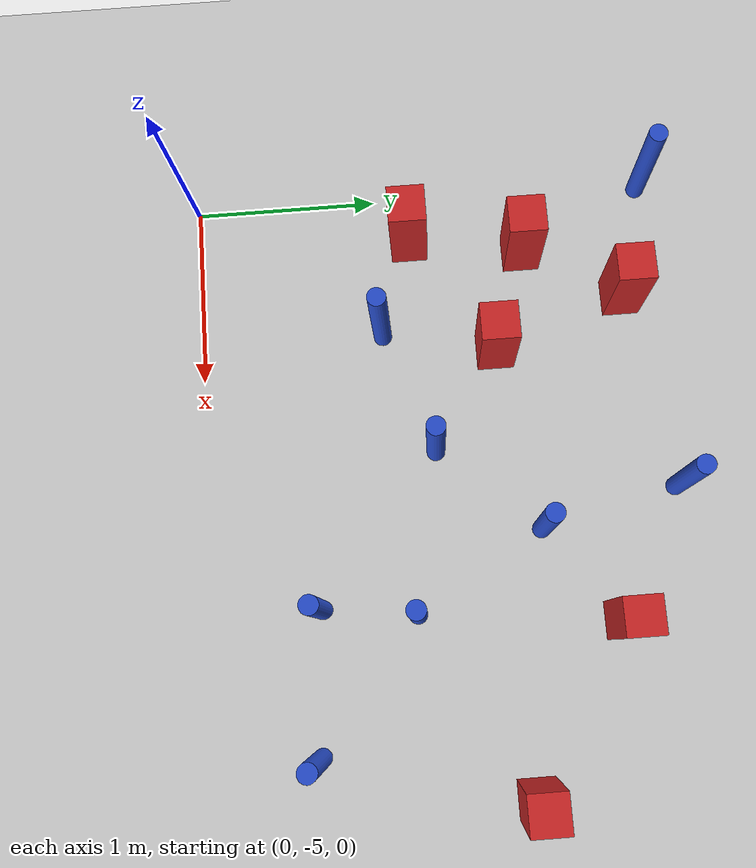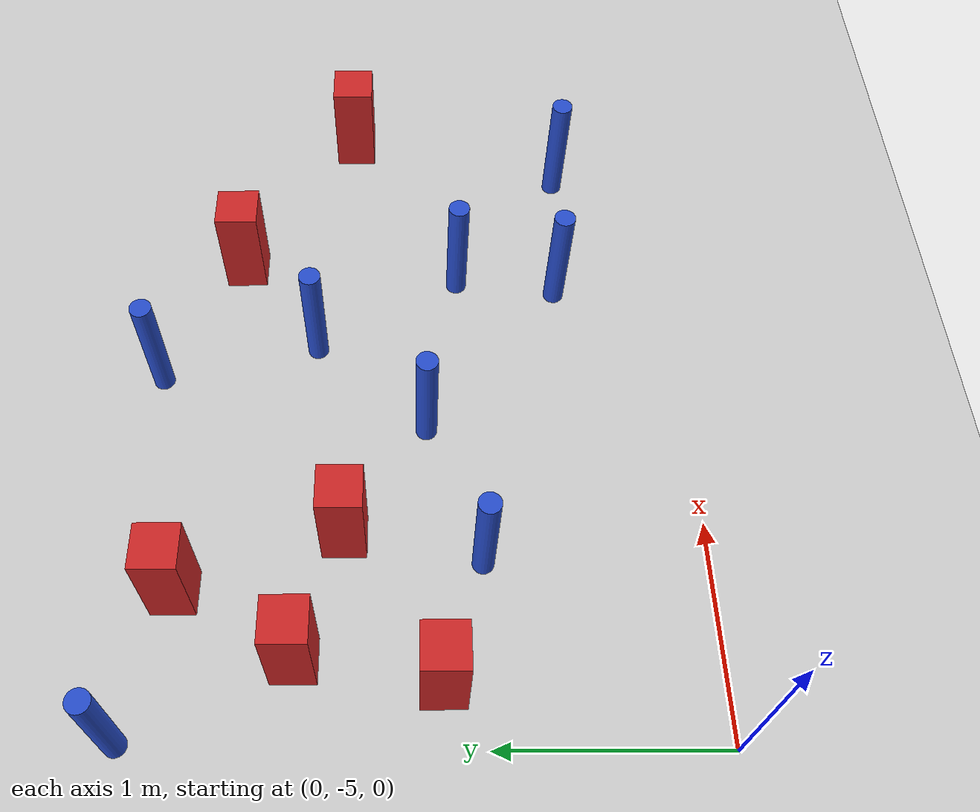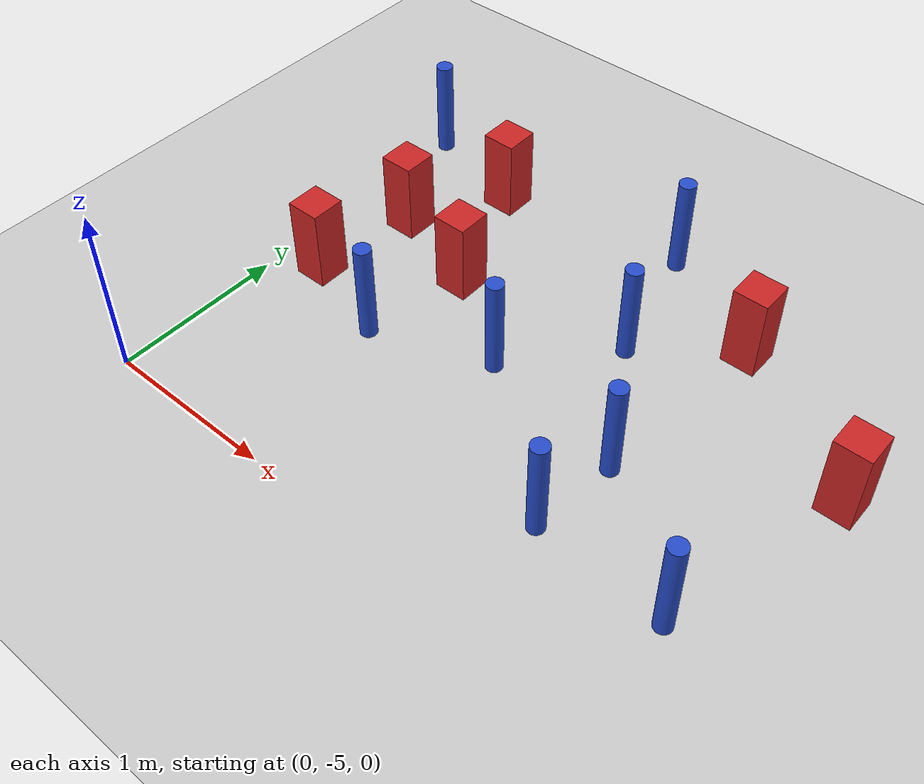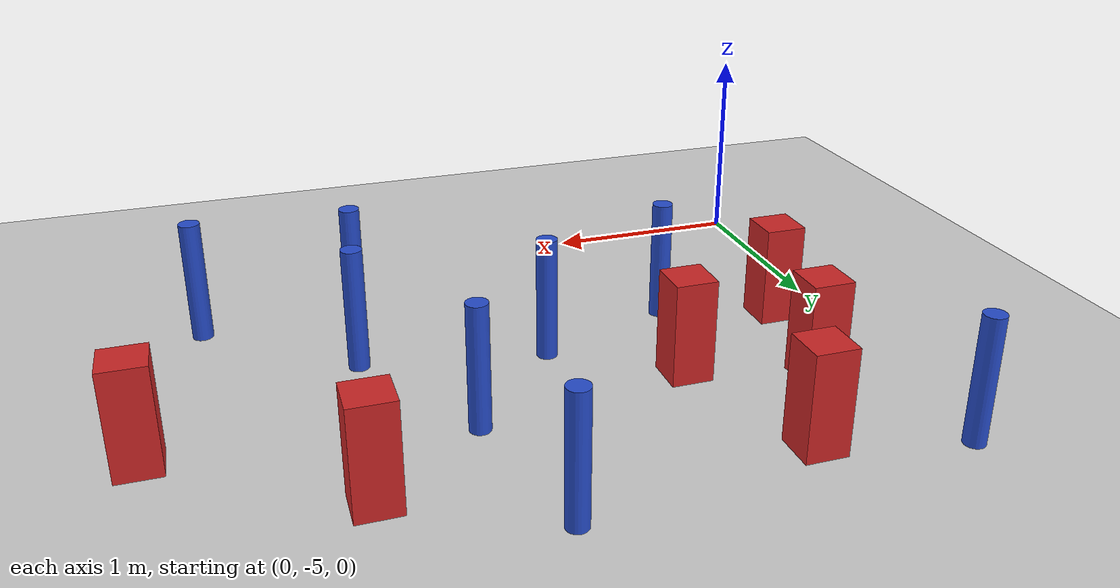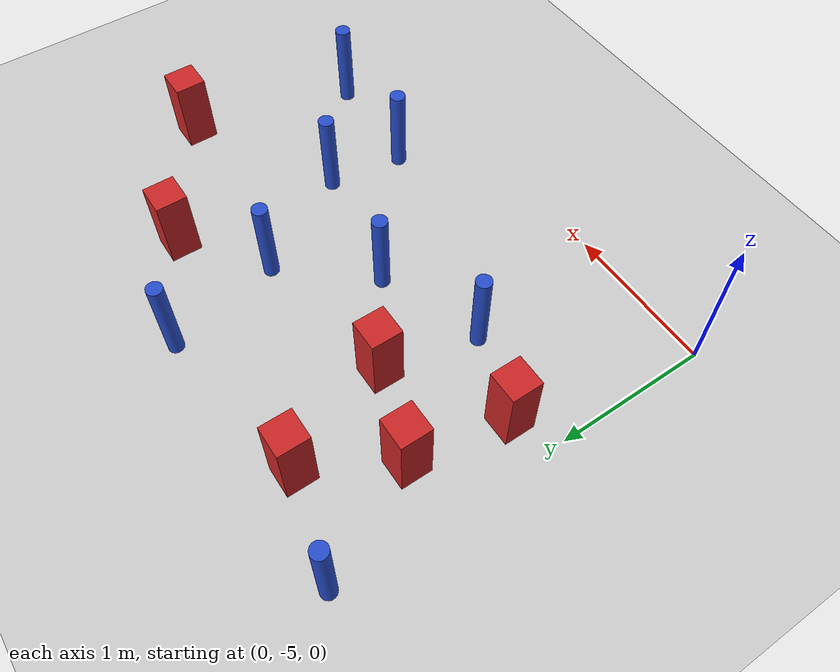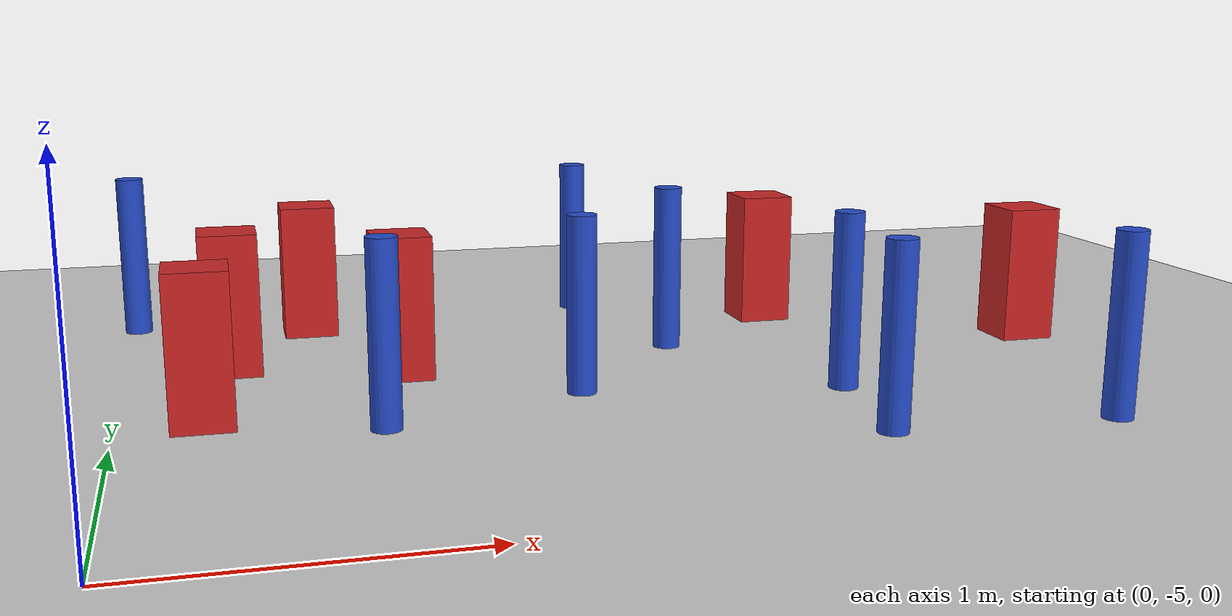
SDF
<sdf version="1.6">
 <world name="default">
  <model name="ground_plane">
   <static>1</static>
   <link name="link">
    <collision name="collision">
     <geometry><plane><normal>0 0 1</normal><size>100 100</size></plane></geometry>
     <surface><friction><ode><mu>100</mu><mu2>50</mu2></ode></friction></surface>
    </collision>
    <visual name="visual">
     <cast_shadows>0</cast_shadows>
     <geometry><plane><normal>0 0 1</normal><size>100 100</size></plane></geometry>
     <material>
      <ambient>1.0 1.0 1.0 1.0</ambient>
      <diffuse>0.8 0.8 0.8 1.0</diffuse>
      <specular>0.01 0.01 0.01 1.000000</specular>
     </material>
    </visual>
   </link>
  </model>
  <model name="pole_obstacle17">
   <static>true</static>
   <pose>2.30088741263 -4.41169465217 7.38925637345e-09 -8.47170692798e-08 1.24976765033e-08 -1.74513093019e-07</pose>
   <link name="link">
    <pose>0 0 0.3 0 -0 0</pose>
    <inertial>
     <mass>1</mass>
     <inertia><ixx>0.145833</ixx><ixy>0</ixy><ixz>0</ixz><iyy>0.145833</iyy><iyz>0</iyz><izz>0.125</izz></inertia>
    </inertial>
    <collision name="collision">
     <geometry><cylinder><radius>0.05</radius><length>.6</length></cylinder></geometry>
    </collision>
    <visual name="visual">
     <geometry><cylinder><radius>0.05</radius><length>.6</length></cylinder></geometry>
     <material>
      <script><name>Gazebo/Blue</name><uri>file://media/materials/scripts/gazebo.material</uri></script>
     </material>
    </visual>
   </link>
  </model>
  <model name="pole_obstacle41">
   <static>true</static>
   <pose>1.49219804884 -3.75339099654 7.38925637345e-09 -8.47170692799e-08 1.24976765053e-08 -1.74513093017e-07</pose>
   <link name="link">
    <pose>0 0 0.3 0 -0 0</pose>
    <inertial>
     <mass>1</mass>
     <inertia><ixx>0.145833</ixx><ixy>0</ixy><ixz>0</ixz><iyy>0.145833</iyy><iyz>0</iyz><izz>0.125</izz></inertia>
    </inertial>
    <collision name="collision">
     <geometry><cylinder><radius>0.05</radius><length>.6</length></cylinder></geometry>
    </collision>
    <visual name="visual">
     <geometry><cylinder><radius>0.05</radius><length>.6</length></cylinder></geometry>
     <material>
      <script><name>Gazebo/Blue</name><uri>file://media/materials/scripts/gazebo.material</uri></script>
     </material>
    </visual>
   </link>
  </model>
  <model name="pole_obstacle50">
   <static>true</static>
   <pose>2.36343220063 -3.91300759229 7.38925637345e-09 -8.47170692798e-08 1.24976764939e-08 -1.74513093025e-07</pose>
   <link name="link">
    <pose>0 0 0.3 0 -0 0</pose>
    <inertial>
     <mass>1</mass>
     <inertia><ixx>0.145833</ixx><ixy>0</ixy><ixz>0</ixz><iyy>0.145833</iyy><iyz>0</iyz><izz>0.125</izz></inertia>
    </inertial>
    <collision name="collision">
     <geometry><cylinder><radius>0.05</radius><length>.6</length></cylinder></geometry>
    </collision>
    <visual name="visual">
     <geometry><cylinder><radius>0.05</radius><length>.6</length></cylinder></geometry>
     <material>
      <script><name>Gazebo/Blue</name><uri>file://media/materials/scripts/gazebo.material</uri></script>
     </material>
    </visual>
   </link>
  </model>
  <model name="pole_obstacle55">
   <static>true</static>
   <pose>1.78070648098 -2.47461447134 7.38925637345e-09 -8.47170692799e-08 1.24976765053e-08 -1.74513093017e-07</pose>
   <link name="link">
    <pose>0 0 0.3 0 -0 0</pose>
    <inertial>
     <mass>1</mass>
     <inertia><ixx>0.145833</ixx><ixy>0</ixy><ixz>0</ixz><iyy>0.145833</iyy><iyz>0</iyz><izz>0.125</izz></inertia>
    </inertial>
    <collision name="collision">
     <geometry><cylinder><radius>0.05</radius><length>.6</length></cylinder></geometry>
    </collision>
    <visual name="visual">
     <geometry><cylinder><radius>0.05</radius><length>.6</length></cylinder></geometry>
     <material>
      <script><name>Gazebo/Blue</name><uri>file://media/materials/scripts/gazebo.material</uri></script>
     </material>
    </visual>
   </link>
  </model>
  <model name="square_post_obstacle45">
   <static>true</static>
   <pose>0.678943746648 -2.65649669118 1.91545236811e-07 -7.35059704564e-06 1.12565212e-07 2.39332434364e-05</pose>
   <link name="link">
    <pose>0 0 0.25 0 -0 0</pose>
    <inertial>
     <mass>100</mass>
     <inertia>
      <ixx>0.166667</ixx>
      <ixy>0</ixy>
      <ixz>0</ixz>
      <iyy>0.166667</iyy>
      <iyz>0</iyz>
      <izz>0.166667</izz>
     </inertia>
    </inertial>
    <collision name="collision"><geometry><box><size>.2 .2 .5</size></box></geometry></collision>
    <visual name="visual">
     <geometry><box><size>.2 .2 .5</size></box></geometry>
     <material>
      <script><name>Gazebo/Red</name><uri>file://media/materials/scripts/gazebo.material</uri></script>
     </material>
    </visual>
   </link>
  </model>
  <model name="square_post_obstacle70">
   <static>true</static>
   <pose>0.268658454997 -3.81487261849 1.91545236811e-07 -7.35059704564e-06 1.12565212e-07 2.39332434364e-05</pose>
   <link name="link">
    <pose>0 0 0.25 0 -0 0</pose>
    <inertial>
     <mass>100</mass>
     <inertia>
      <ixx>0.166667</ixx>
      <ixy>0</ixy>
      <ixz>0</ixz>
      <iyy>0.166667</iyy>
      <iyz>0</iyz>
      <izz>0.166667</izz>
     </inertia>
    </inertial>
    <collision name="collision"><geometry><box><size>.2 .2 .5</size></box></geometry></collision>
    <visual name="visual">
     <geometry><box><size>.2 .2 .5</size></box></geometry>
     <material>
      <script><name>Gazebo/Red</name><uri>file://media/materials/scripts/gazebo.material</uri></script>
     </material>
    </visual>
   </link>
  </model>
  <model name="pole_obstacle93">
   <static>true</static>
   <pose>1.95817246173 -3.22002427242 7.38925637345e-09 -8.47170692799e-08 1.24976765015e-08 -1.74513093019e-07</pose>
   <link name="link">
    <pose>0 0 0.3 0 -0 0</pose>
    <inertial>
     <mass>1</mass>
     <inertia><ixx>0.145833</ixx><ixy>0</ixy><ixz>0</ixz><iyy>0.145833</iyy><iyz>0</iyz><izz>0.125</izz></inertia>
    </inertial>
    <collision name="collision">
     <geometry><cylinder><radius>0.05</radius><length>.6</length></cylinder></geometry>
    </collision>
    <visual name="visual">
     <geometry><cylinder><radius>0.05</radius><length>.6</length></cylinder></geometry>
     <material>
      <script><name>Gazebo/Blue</name><uri>file://media/materials/scripts/gazebo.material</uri></script>
     </material>
    </visual>
   </link>
  </model>
  <model name="pole_obstacle115">
   <static>true</static>
   <pose>3.04978709195 -4.45508612711 7.38925637345e-09 -8.47170692798e-08 1.24976765033e-08 -1.74513093019e-07</pose>
   <link name="link">
    <pose>0 0 0.3 0 -0 0</pose>
    <inertial>
     <mass>1</mass>
     <inertia><ixx>0.145833</ixx><ixy>0</ixy><ixz>0</ixz><iyy>0.145833</iyy><iyz>0</iyz><izz>0.125</izz></inertia>
    </inertial>
    <collision name="collision">
     <geometry><cylinder><radius>0.05</radius><length>.6</length></cylinder></geometry>
    </collision>
    <visual name="visual">
     <geometry><cylinder><radius>0.05</radius><length>.6</length></cylinder></geometry>
     <material>
      <script><name>Gazebo/Blue</name><uri>file://media/materials/scripts/gazebo.material</uri></script>
     </material>
    </visual>
   </link>
  </model>
  <model name="square_post_obstacle127">
   <static>true</static>
   <pose>0.372890647758 -3.1906439933 1.91545236811e-07 -7.35059704564e-06 1.12565212e-07 2.39332434364e-05</pose>
   <link name="link">
    <pose>0 0 0.25 0 -0 0</pose>
    <inertial>
     <mass>100</mass>
     <inertia>
      <ixx>0.166667</ixx>
      <ixy>0</ixy>
      <ixz>0</ixz>
      <iyy>0.166667</iyy>
      <iyz>0</iyz>
      <izz>0.166667</izz>
     </inertia>
    </inertial>
    <collision name="collision"><geometry><box><size>.2 .2 .5</size></box></geometry></collision>
    <visual name="visual">
     <geometry><box><size>.2 .2 .5</size></box></geometry>
     <material>
      <script><name>Gazebo/Red</name><uri>file://media/materials/scripts/gazebo.material</uri></script>
     </material>
    </visual>
   </link>
  </model>
  <model name="square_post_obstacle167">
   <static>true</static>
   <pose>0.943095343789 -3.38445851691 1.91545236811e-07 -7.35059704564e-06 1.12565212e-07 2.39332434364e-05</pose>
   <link name="link">
    <pose>0 0 0.25 0 -0 0</pose>
    <inertial>
     <mass>100</mass>
     <inertia>
      <ixx>0.166667</ixx>
      <ixy>0</ixy>
      <ixz>0</ixz>
      <iyy>0.166667</iyy>
      <iyz>0</iyz>
      <izz>0.166667</izz>
     </inertia>
    </inertial>
    <collision name="collision"><geometry><box><size>.2 .2 .5</size></box></geometry></collision>
    <visual name="visual">
     <geometry><box><size>.2 .2 .5</size></box></geometry>
     <material>
      <script><name>Gazebo/Red</name><uri>file://media/materials/scripts/gazebo.material</uri></script>
     </material>
    </visual>
   </link>
  </model>
  <model name="square_post_obstacle177">
   <static>true</static>
   <pose>2.46939267016 -2.83311302489 1.91545236811e-07 -7.35059704564e-06 1.12565212e-07 2.39332434364e-05</pose>
   <link name="link">
    <pose>0 0 0.25 0 -0 0</pose>
    <inertial>
     <mass>100</mass>
     <inertia>
      <ixx>0.166667</ixx>
      <ixy>0</ixy>
      <ixz>0</ixz>
      <iyy>0.166667</iyy>
      <iyz>0</iyz>
      <izz>0.166667</izz>
     </inertia>
    </inertial>
    <collision name="collision"><geometry><box><size>.2 .2 .5</size></box></geometry></collision>
    <visual name="visual">
     <geometry><box><size>.2 .2 .5</size></box></geometry>
     <material>
      <script><name>Gazebo/Red</name><uri>file://media/materials/scripts/gazebo.material</uri></script>
     </material>
    </visual>
   </link>
  </model>
  <model name="square_post_obstacle190">
   <static>true</static>
   <pose>3.32899678076 -3.37522071215 1.91545236811e-07 -7.35059704564e-06 1.12565212e-07 2.39332434364e-05</pose>
   <link name="link">
    <pose>0 0 0.25 0 -0 0</pose>
    <inertial>
     <mass>100</mass>
     <inertia>
      <ixx>0.166667</ixx>
      <ixy>0</ixy>
      <ixz>0</ixz>
      <iyy>0.166667</iyy>
      <iyz>0</iyz>
      <izz>0.166667</izz>
     </inertia>
    </inertial>
    <collision name="collision"><geometry><box><size>.2 .2 .5</size></box></geometry></collision>
    <visual name="visual">
     <geometry><box><size>.2 .2 .5</size></box></geometry>
     <material>
      <script><name>Gazebo/Red</name><uri>file://media/materials/scripts/gazebo.material</uri></script>
     </material>
    </visual>
   </link>
  </model>
  <model name="pole_obstacle214">
   <static>true</static>
   <pose>0.812067003908 -3.99861042105 7.38925637345e-09 -8.471706928e-08 1.2497676523e-08 -1.7451309301e-07</pose>
   <link name="link">
    <pose>0 0 0.3 0 -0 0</pose>
    <inertial>
     <mass>1</mass>
     <inertia><ixx>0.145833</ixx><ixy>0</ixy><ixz>0</ixz><iyy>0.145833</iyy><iyz>0</iyz><izz>0.125</izz></inertia>
    </inertial>
    <collision name="collision">
     <geometry><cylinder><radius>0.05</radius><length>.6</length></cylinder></geometry>
    </collision>
    <visual name="visual">
     <geometry><cylinder><radius>0.05</radius><length>.6</length></cylinder></geometry>
     <material>
      <script><name>Gazebo/Blue</name><uri>file://media/materials/scripts/gazebo.material</uri></script>
     </material>
    </visual>
   </link>
  </model>
  <model name="pole_obstacle216">
   <static>true</static>
   <pose>0.0299542098249 -2.48621785911 7.38925637345e-09 -8.471706928e-08 1.24976765089e-08 -1.74513093014e-07</pose>
   <link name="link">
    <pose>0 0 0.3 0 -0 0</pose>
    <inertial>
     <mass>1</mass>
     <inertia><ixx>0.145833</ixx><ixy>0</ixy><ixz>0</ixz><iyy>0.145833</iyy><iyz>0</iyz><izz>0.125</izz></inertia>
    </inertial>
    <collision name="collision">
     <geometry><cylinder><radius>0.05</radius><length>.6</length></cylinder></geometry>
    </collision>
    <visual name="visual">
     <geometry><cylinder><radius>0.05</radius><length>.6</length></cylinder></geometry>
     <material>
      <script><name>Gazebo/Blue</name><uri>file://media/materials/scripts/gazebo.material</uri></script>
     </material>
    </visual>
   </link>
  </model>
 </world>
</sdf>
